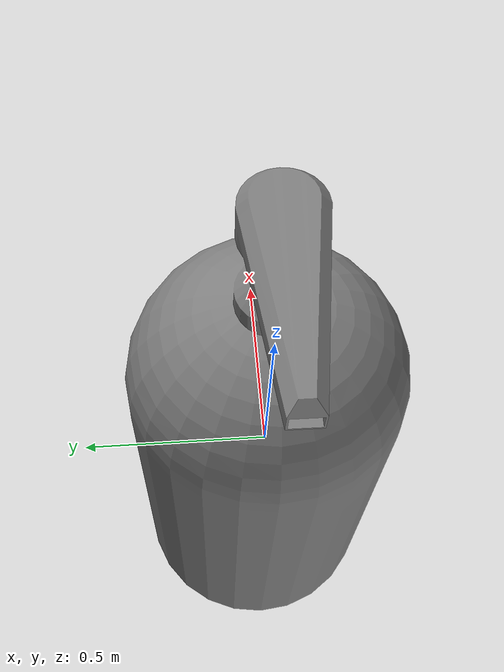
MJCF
<?xml version='1.0' encoding='UTF-8'?>
<mujoco model="partnet_5ca994bd512be485db3bac7ad77ae88e">
  <compiler angle="radian"/>
  <asset>
    <mesh name="original_2" content_type="model/obj" file="textured_objs/original_2.obj"/>
    <mesh name="original_3" content_type="model/obj" file="textured_objs/original_3.obj"/>
    <mesh name="original_4" content_type="model/obj" file="textured_objs/original_4.obj"/>
    <mesh name="original_1" content_type="model/obj" file="textured_objs/original_1.obj"/>
  </asset>
  <worldbody>
    <body name="base">
      <body name="link_1" quat="0.5 0.5 -0.5 -0.5">
        <geom type="mesh" mesh="original_1"/>
        <body name="link_0_helper" pos="-0.00875506 0 -0.0137057">
          <inertial pos="0 0 0" mass="1e-06" diaginertia="1e-10 1e-10 1e-10"/>
          <joint name="joint_2" pos="0 0 0" axis="0 -1 0" type="slide" range="0 0.096"/>
          <body name="link_0">
            <joint name="joint_0" pos="0 0 0" axis="0 1 0"/>
            <geom pos="0.00875506 0 0.0137057" quat="1 0 0 0" type="mesh" mesh="original_2"/>
            <geom pos="0.00875506 0 0.0137057" quat="1 0 0 0" type="mesh" mesh="original_3"/>
            <geom pos="0.00875506 0 0.0137057" quat="1 0 0 0" type="mesh" mesh="original_4"/>
          </body>
        </body>
      </body>
    </body>
  </worldbody>
</mujoco>
